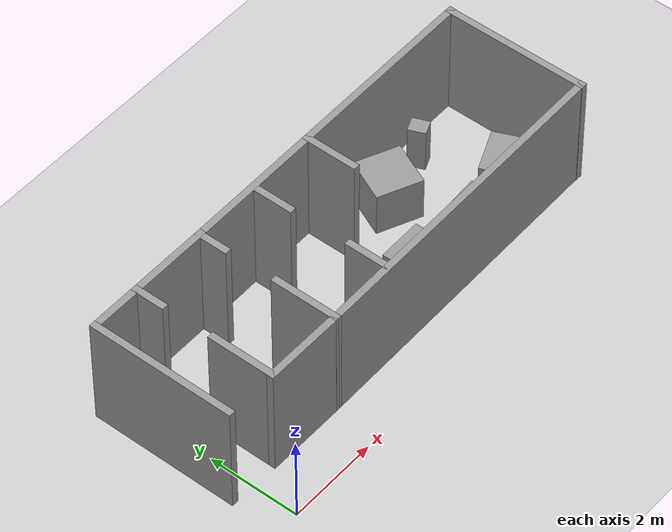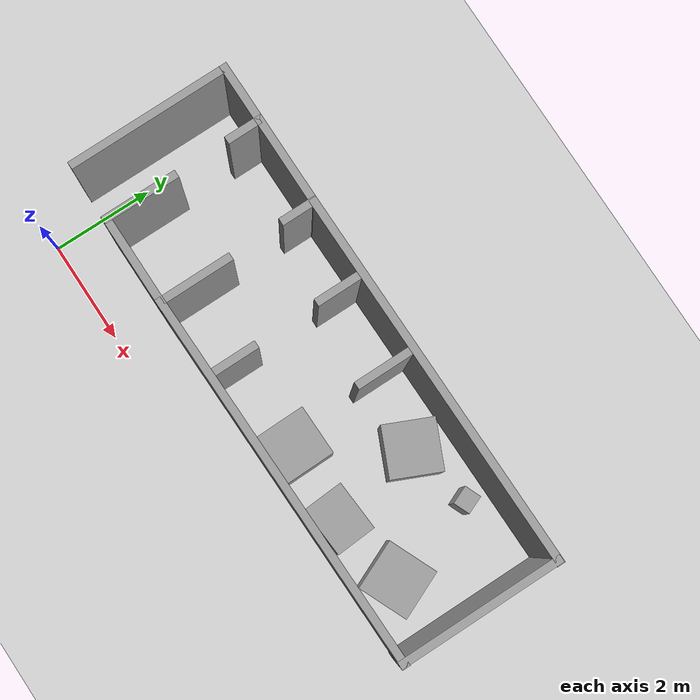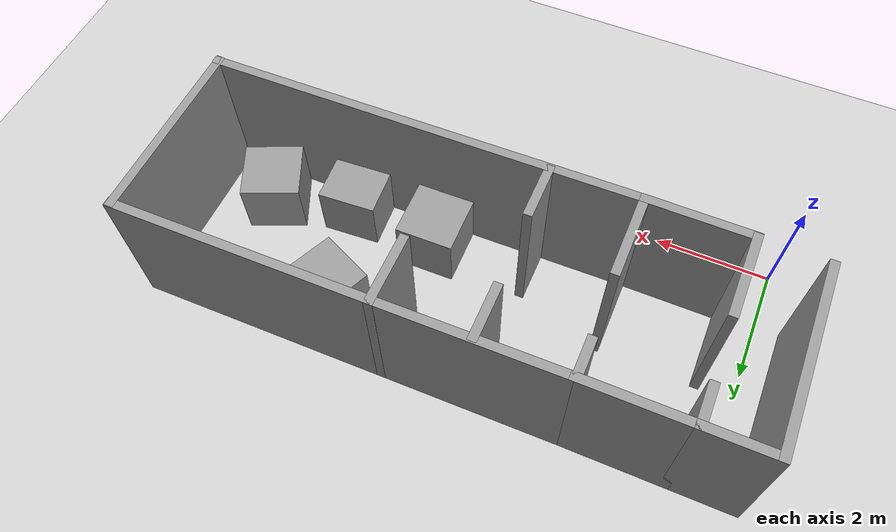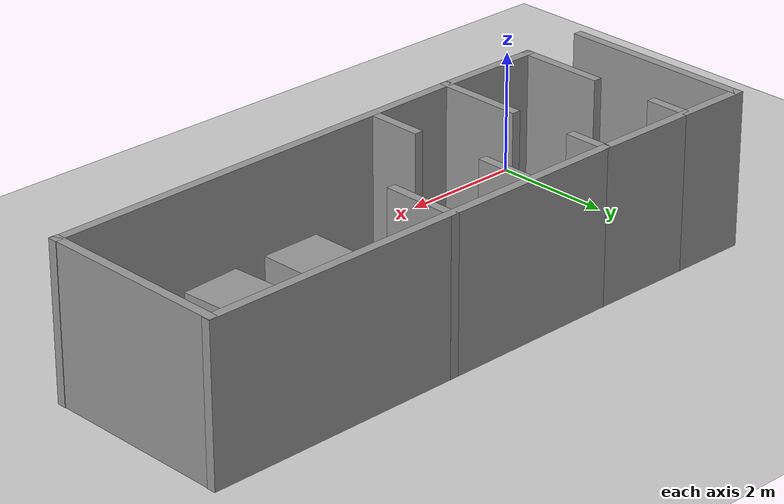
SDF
<sdf version="1.7">
 <world name="default">
  <light name="sun" type="directional">
   <pose>0 0 10 0 -0 0</pose>
   <diffuse>0.8 0.8 0.8 1</diffuse>
   <specular>0.2 0.2 0.2 1</specular>
   <attenuation>
    <range>1000</range>
    <constant>0.9</constant>
    <linear>0.01</linear>
    <quadratic>0.001</quadratic>
   </attenuation>
   <direction>-0.5 0.1 -0.9</direction>
   <spot><inner_angle>0</inner_angle><outer_angle>0</outer_angle><falloff>0</falloff></spot>
  </light>
  <model name="ground_plane">
   <static>1</static>
   <link name="link">
    <collision name="collision">
     <geometry><plane><normal>0 0 1</normal><size>100 100</size></plane></geometry>
     <surface>
      <contact><collide_bitmask>65535</collide_bitmask></contact>
      <friction><ode><mu>100</mu><mu2>50</mu2></ode></friction>
     </surface>
    </collision>
    <visual name="visual">
     <cast_shadows>0</cast_shadows>
     <geometry><plane><normal>0 0 1</normal><size>100 100</size></plane></geometry>
     <material>
      <script><uri>file://media/materials/scripts/gazebo.material</uri><name>Gazebo/Grey</name></script>
     </material>
    </visual>
   </link>
  </model>
  <gravity>0 0 -9.8</gravity>
  <magnetic_field>6e-06 2.3e-05 -4.2e-05</magnetic_field>
  <atmosphere type="adiabatic"/>
  <physics type="ode">
   <max_step_size>0.001</max_step_size>
   <real_time_factor>1</real_time_factor>
   <real_time_update_rate>1000</real_time_update_rate>
  </physics>
  <scene><ambient>0.4 0.4 0.4 1</ambient><background>0.7 0.7 0.7 1</background><shadows>1</shadows></scene>
  <audio><device>default</device></audio>
  <spherical_coordinates>
   <surface_model>EARTH_WGS84</surface_model>
   <latitude_deg>0</latitude_deg>
   <longitude_deg>0</longitude_deg>
   <elevation>0</elevation>
   <heading_deg>0</heading_deg>
  </spherical_coordinates>
  <model name="stero_dom">
   <pose>4.59227 2.84407 0 0 -0 0</pose>
   <link name="Wall_0">
    <collision name="Wall_0_Collision">
     <geometry><box><size>3.25 0.15 2.5</size></box></geometry>
     <pose>0 0 1.25 0 -0 0</pose>
    </collision>
    <visual name="Wall_0_Visual">
     <pose>0 0 1.25 0 -0 0</pose>
     <geometry><box><size>3.25 0.15 2.5</size></box></geometry>
     <material>
      <script><uri>file://media/materials/scripts/gazebo.material</uri><name>Gazebo/Grey</name></script>
      <ambient>1 1 1 1</ambient>
     </material>
     <meta><layer>0</layer></meta>
    </visual>
    <pose>-5.08046 -0.211942 0 0 -0 1.5708</pose>
   </link>
   <link name="Wall_1">
    <collision name="Wall_1_Collision">
     <geometry><box><size>1.25 0.15 2.5</size></box></geometry>
     <pose>0 0 1.25 0 -0 0</pose>
    </collision>
    <visual name="Wall_1_Visual">
     <pose>0 0 1.25 0 -0 0</pose>
     <geometry><box><size>1.25 0.15 2.5</size></box></geometry>
     <material>
      <script><uri>file://media/materials/scripts/gazebo.material</uri><name>Gazebo/Grey</name></script>
      <ambient>1 1 1 1</ambient>
     </material>
     <meta><layer>0</layer></meta>
    </visual>
    <pose>-4.53046 1.33806 0 0 -0 0</pose>
   </link>
   <link name="Wall_10">
    <collision name="Wall_10_Collision">
     <geometry><box><size>1.5 0.15 2.5</size></box></geometry>
     <pose>0 0 1.25 0 -0 0</pose>
    </collision>
    <visual name="Wall_10_Visual">
     <pose>0 0 1.25 0 -0 0</pose>
     <geometry><box><size>1.5 0.15 2.5</size></box></geometry>
     <material>
      <script><uri>file://media/materials/scripts/gazebo.material</uri><name>Gazebo/Grey</name></script>
      <ambient>1 1 1 1</ambient>
     </material>
     <meta><layer>0</layer></meta>
    </visual>
    <pose>-2.24046 -1.11694 0 0 -0 1.5708</pose>
   </link>
   <link name="Wall_12">
    <collision name="Wall_12_Collision">
     <geometry><box><size>7.48033 0.15 2.5</size></box></geometry>
     <pose>0 0 1.25 0 -0 0</pose>
    </collision>
    <visual name="Wall_12_Visual">
     <pose>0 0 1.25 0 -0 0</pose>
     <geometry><box><size>7.48033 0.15 2.5</size></box></geometry>
     <material>
      <script><uri>file://media/materials/scripts/gazebo.material</uri><name>Gazebo/Grey</name></script>
      <ambient>1 1 1 1</ambient>
     </material>
     <meta><layer>0</layer></meta>
    </visual>
    <pose>1.41454 1.37306 0 0 -0 0.00955</pose>
   </link>
   <link name="Wall_13">
    <collision name="Wall_13_Collision">
     <geometry><box><size>3.25 0.15 2.5</size></box></geometry>
     <pose>0 0 1.25 0 -0 0</pose>
    </collision>
    <visual name="Wall_13_Visual">
     <pose>0 0 1.25 0 -0 0</pose>
     <geometry><box><size>3.25 0.15 2.5</size></box></geometry>
     <material>
      <script><uri>file://media/materials/scripts/gazebo.material</uri><name>Gazebo/Grey</name></script>
      <ambient>1 1 1 1</ambient>
     </material>
     <meta><layer>0</layer></meta>
    </visual>
    <pose>5.06954 -0.151942 0 0 -0 -1.5708</pose>
   </link>
   <link name="Wall_14">
    <collision name="Wall_14_Collision">
     <geometry><box><size>7.47044 0.15 2.5</size></box></geometry>
     <pose>0 0 1.25 0 -0 0</pose>
    </collision>
    <visual name="Wall_14_Visual">
     <pose>0 0 1.25 0 -0 0</pose>
     <geometry><box><size>7.47044 0.15 2.5</size></box></geometry>
     <material>
      <script><uri>file://media/materials/scripts/gazebo.material</uri><name>Gazebo/Grey</name></script>
      <ambient>1 1 1 1</ambient>
     </material>
     <meta><layer>0</layer></meta>
    </visual>
    <pose>1.41954 -1.74694 0 0 -0 -3.12657</pose>
   </link>
   <link name="Wall_17">
    <collision name="Wall_17_Collision">
     <geometry><box><size>1 0.15 2.5</size></box></geometry>
     <pose>0 0 1.25 0 -0 0</pose>
    </collision>
    <visual name="Wall_17_Visual">
     <pose>0 0 1.25 0 -0 0</pose>
     <geometry><box><size>1 0.15 2.5</size></box></geometry>
     <material>
      <script><uri>file://media/materials/scripts/gazebo.material</uri><name>Gazebo/Grey</name></script>
      <ambient>1 1 1 1</ambient>
     </material>
     <meta><layer>0</layer></meta>
    </visual>
    <pose>-0.730462 -1.32694 0 0 -0 1.5708</pose>
   </link>
   <link name="Wall_19">
    <collision name="Wall_19_Collision">
     <geometry><box><size>1 0.15 2.5</size></box></geometry>
     <pose>0 0 1.25 0 -0 0</pose>
    </collision>
    <visual name="Wall_19_Visual">
     <pose>0 0 1.25 0 -0 0</pose>
     <geometry><box><size>1 0.15 2.5</size></box></geometry>
     <material>
      <script><uri>file://media/materials/scripts/gazebo.material</uri><name>Gazebo/Grey</name></script>
      <ambient>1 1 1 1</ambient>
     </material>
     <meta><layer>0</layer></meta>
    </visual>
    <pose>-0.770463 0.903058 0 0 -0 -1.5708</pose>
   </link>
   <link name="Wall_2">
    <collision name="Wall_2_Collision">
     <geometry><box><size>0.75 0.15 2.5</size></box></geometry>
     <pose>0 0 1.25 0 -0 0</pose>
    </collision>
    <visual name="Wall_2_Visual">
     <pose>0 0 1.25 0 -0 0</pose>
     <geometry><box><size>0.75 0.15 2.5</size></box></geometry>
     <material>
      <script><uri>file://media/materials/scripts/gazebo.material</uri><name>Gazebo/Grey</name></script>
      <ambient>1 1 1 1</ambient>
     </material>
     <meta><layer>0</layer></meta>
    </visual>
    <pose>-3.98046 1.03806 0 0 -0 -1.5708</pose>
   </link>
   <link name="Wall_21">
    <collision name="Wall_21_Collision">
     <geometry><box><size>1.25 0.15 2.5</size></box></geometry>
     <pose>0 0 1.25 0 -0 0</pose>
    </collision>
    <visual name="Wall_21_Visual">
     <pose>0 0 1.25 0 -0 0</pose>
     <geometry><box><size>1.25 0.15 2.5</size></box></geometry>
     <material>
      <script><uri>file://media/materials/scripts/gazebo.material</uri><name>Gazebo/Grey</name></script>
      <ambient>1 1 1 1</ambient>
     </material>
     <meta><layer>0</layer></meta>
    </visual>
    <pose>0.789538 0.818058 0 0 -0 -1.5708</pose>
   </link>
   <link name="Wall_4">
    <collision name="Wall_4_Collision">
     <geometry><box><size>1.5 0.15 2.5</size></box></geometry>
     <pose>0 0 1.25 0 -0 0</pose>
    </collision>
    <visual name="Wall_4_Visual">
     <pose>0 0 1.25 0 -0 0</pose>
     <geometry><box><size>1.5 0.15 2.5</size></box></geometry>
     <material>
      <script><uri>file://media/materials/scripts/gazebo.material</uri><name>Gazebo/Grey</name></script>
      <ambient>1 1 1 1</ambient>
     </material>
     <meta><layer>0</layer></meta>
    </visual>
    <pose>-3.96046 -1.11694 0 0 -0 1.5708</pose>
   </link>
   <link name="Wall_6">
    <collision name="Wall_6_Collision">
     <geometry><box><size>1.88 0.15 2.5</size></box></geometry>
     <pose>0 0 1.25 0 -0 0</pose>
    </collision>
    <visual name="Wall_6_Visual">
     <pose>0 0 1.25 0 -0 0</pose>
     <geometry><box><size>1.88 0.15 2.5</size></box></geometry>
     <material>
      <script><uri>file://media/materials/scripts/gazebo.material</uri><name>Gazebo/Grey</name></script>
      <ambient>1 1 1 1</ambient>
     </material>
     <meta><layer>0</layer></meta>
    </visual>
    <pose>-3.11546 1.33806 0 0 -0 0</pose>
   </link>
   <link name="Wall_7">
    <collision name="Wall_7_Collision">
     <geometry><box><size>0.75 0.15 2.5</size></box></geometry>
     <pose>0 0 1.25 0 -0 0</pose>
    </collision>
    <visual name="Wall_7_Visual">
     <pose>0 0 1.25 0 -0 0</pose>
     <geometry><box><size>0.75 0.15 2.5</size></box></geometry>
     <material>
      <script><uri>file://media/materials/scripts/gazebo.material</uri><name>Gazebo/Grey</name></script>
      <ambient>1 1 1 1</ambient>
     </material>
     <meta><layer>0</layer></meta>
    </visual>
    <pose>-2.27046 1.03806 0 0 -0 -1.5708</pose>
   </link>
   <link name="Wall_9">
    <collision name="Wall_9_Collision">
     <geometry><box><size>1.87026 0.15 2.5</size></box></geometry>
     <pose>0 0 1.25 0 -0 0</pose>
    </collision>
    <visual name="Wall_9_Visual">
     <pose>0 0 1.25 0 -0 0</pose>
     <geometry><box><size>1.87026 0.15 2.5</size></box></geometry>
     <material>
      <script><uri>file://media/materials/scripts/gazebo.material</uri><name>Gazebo/Grey</name></script>
      <ambient>1 1 1 1</ambient>
     </material>
     <meta><layer>0</layer></meta>
    </visual>
    <pose>-3.10046 -1.80194 0 0 -0 0</pose>
   </link>
   <static>1</static>
  </model>
  <model name="unit_box">
   <pose>6.75979 3.39803 0.499995 -1e-05 -0 -0.422224</pose>
   <link name="link">
    <inertial>
     <mass>1</mass>
     <inertia>
      <ixx>0.166667</ixx>
      <ixy>0</ixy>
      <ixz>0</ixz>
      <iyy>0.166667</iyy>
      <iyz>0</iyz>
      <izz>0.166667</izz>
     </inertia>
    </inertial>
    <collision name="collision"><geometry><box><size>1 1 1</size></box></geometry></collision>
    <visual name="visual">
     <geometry><box><size>1 1 1</size></box></geometry>
     <material>
      <script><name>Gazebo/Grey</name><uri>file://media/materials/scripts/gazebo.material</uri></script>
     </material>
    </visual>
   </link>
  </model>
  <model name="unit_box_0">
   <pose>8.55611 1.89179 0.499995 -1e-05 0 0.411931</pose>
   <link name="link">
    <inertial>
     <mass>1</mass>
     <inertia>
      <ixx>0.166667</ixx>
      <ixy>0</ixy>
      <ixz>0</ixz>
      <iyy>0.166667</iyy>
      <iyz>0</iyz>
      <izz>0.166667</izz>
     </inertia>
    </inertial>
    <collision name="collision"><geometry><box><size>1 1 1</size></box></geometry></collision>
    <visual name="visual">
     <geometry><box><size>1 1 1</size></box></geometry>
     <material>
      <script><name>Gazebo/Grey</name><uri>file://media/materials/scripts/gazebo.material</uri></script>
     </material>
    </visual>
   </link>
  </model>
  <model name="unit_box_1">
   <pose>5.56605 1.66555 0.499995 1e-05 -0 0.015013</pose>
   <link name="link">
    <inertial>
     <mass>1</mass>
     <inertia>
      <ixx>0.166667</ixx>
      <ixy>0</ixy>
      <ixz>0</ixz>
      <iyy>0.166667</iyy>
      <iyz>0</iyz>
      <izz>0.166667</izz>
     </inertia>
    </inertial>
    <collision name="collision"><geometry><box><size>1 1 1</size></box></geometry></collision>
    <visual name="visual">
     <geometry><box><size>1 1 1</size></box></geometry>
     <material>
      <script><name>Gazebo/Grey</name><uri>file://media/materials/scripts/gazebo.material</uri></script>
     </material>
    </visual>
   </link>
  </model>
  <model name="unit_box_2">
   <pose>7.09377 1.61654 0.5 0 -0 0.064985</pose>
   <link name="link">
    <inertial>
     <mass>1</mass>
     <inertia>
      <ixx>0.166667</ixx>
      <ixy>0</ixy>
      <ixz>0</ixz>
      <iyy>0.166667</iyy>
      <iyz>0</iyz>
      <izz>0.166667</izz>
     </inertia>
    </inertial>
    <collision name="collision"><geometry><box><size>1 0.80083 1</size></box></geometry></collision>
    <visual name="visual">
     <geometry><box><size>1 0.80083 1</size></box></geometry>
     <material>
      <script><name>Gazebo/Grey</name><uri>file://media/materials/scripts/gazebo.material</uri></script>
     </material>
    </visual>
   </link>
  </model>
  <model name="unit_box_3">
   <pose>8.05729 3.70025 0.499999 2e-06 3e-06 1.96545</pose>
   <link name="link">
    <inertial>
     <mass>1</mass>
     <inertia>
      <ixx>0.166667</ixx>
      <ixy>0</ixy>
      <ixz>0</ixz>
      <iyy>0.166667</iyy>
      <iyz>0</iyz>
      <izz>0.166667</izz>
     </inertia>
    </inertial>
    <collision name="collision"><geometry><box><size>0.372997 0.33241 1</size></box></geometry></collision>
    <visual name="visual">
     <geometry><box><size>0.372997 0.33241 1</size></box></geometry>
     <material>
      <script><name>Gazebo/Grey</name><uri>file://media/materials/scripts/gazebo.material</uri></script>
     </material>
    </visual>
   </link>
  </model>
 </world>
</sdf>
